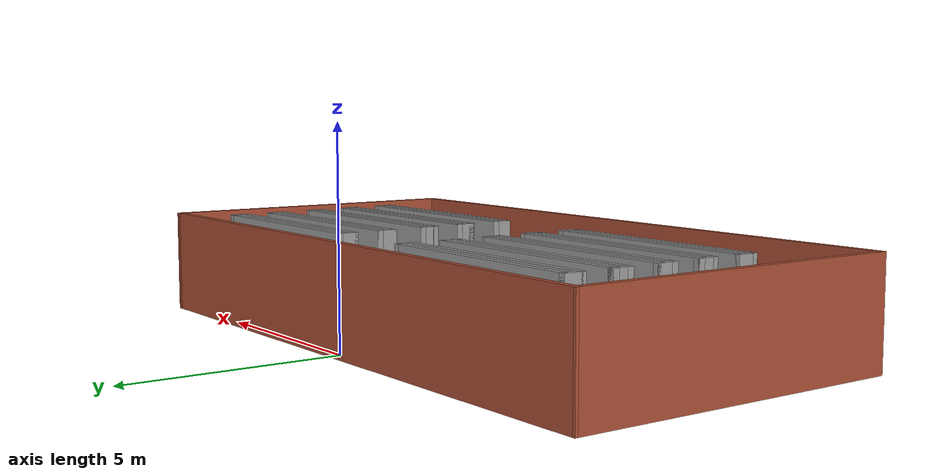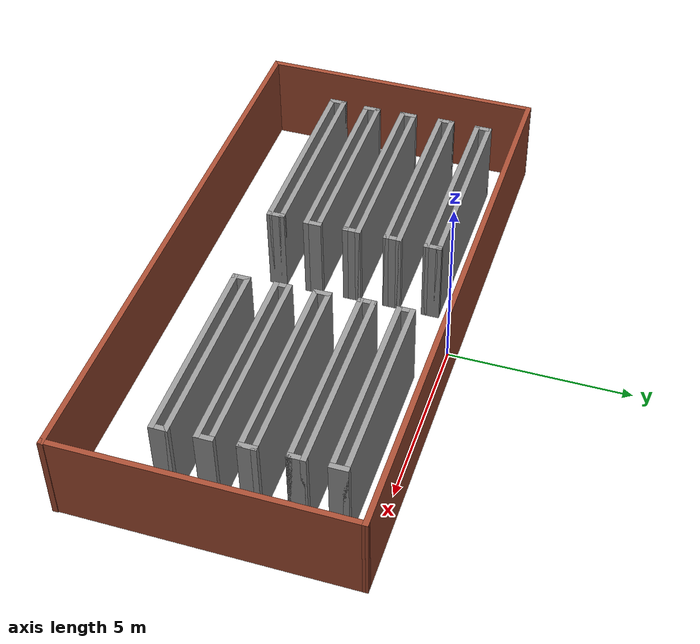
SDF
<?xml version='1.0'?>
<sdf version='1.7'>
  <model name='Library_map'>
    <pose>-0.101493 -3.73 0 0 -0 0</pose>
    <link name='Wall_13'>
      <collision name='Wall_13_Collision'>
        <geometry>
          <box>
            <size>8 0.15 2.5</size>
          </box>
        </geometry>
        <pose>0 0 1.25 0 -0 0</pose>
      </collision>
      <visual name='Wall_13_Visual'>
        <pose>0 0 1.25 0 -0 0</pose>
        <geometry>
          <box>
            <size>8 0.15 2.5</size>
          </box>
        </geometry>
        <material>
          <script>
            <uri>file://media/materials/scripts/gazebo.material</uri>
            <name>Gazebo/Bricks</name>
          </script>
          <ambient>1 1 1 1</ambient>
        </material>
        <meta>
          <layer>0</layer>
        </meta>
      </visual>
      <pose>-7.92514 0 0 0 -0 -1.5735</pose>
    </link>
    <link name='Wall_23'>
      <collision name='Wall_23_Collision'>
        <geometry>
          <box>
            <size>16 0.15 2.5</size>
          </box>
        </geometry>
        <pose>0 0 1.25 0 -0 0</pose>
      </collision>
      <visual name='Wall_23_Visual'>
        <pose>0 0 1.25 0 -0 0</pose>
        <geometry>
          <box>
            <size>16 0.15 2.5</size>
          </box>
        </geometry>
        <material>
          <script>
            <uri>file://media/materials/scripts/gazebo.material</uri>
            <name>Gazebo/Bricks</name>
          </script>
          <ambient>1 1 1 1</ambient>
        </material>
        <meta>
          <layer>0</layer>
        </meta>
      </visual>
      <pose>0.010971 -3.925 0 0 -0 0</pose>
    </link>
    <link name='Wall_24'>
      <collision name='Wall_24_Collision'>
        <geometry>
          <box>
            <size>8 0.15 2.5</size>
          </box>
        </geometry>
        <pose>0 0 1.25 0 -0 0</pose>
      </collision>
      <visual name='Wall_24_Visual'>
        <pose>0 0 1.25 0 -0 0</pose>
        <geometry>
          <box>
            <size>8 0.15 2.5</size>
          </box>
        </geometry>
        <material>
          <script>
            <uri>file://media/materials/scripts/gazebo.material</uri>
            <name>Gazebo/Bricks</name>
          </script>
          <ambient>1 1 1 1</ambient>
        </material>
        <meta>
          <layer>0</layer>
        </meta>
      </visual>
      <pose>7.92486 0 0 0 -0 1.56809</pose>
    </link>
    <link name='Wall_25'>
      <collision name='Wall_25_Collision'>
        <geometry>
          <box>
            <size>16 0.15 2.5</size>
          </box>
        </geometry>
        <pose>0 0 1.25 0 -0 0</pose>
      </collision>
      <visual name='Wall_25_Visual'>
        <pose>0 0 1.25 0 -0 0</pose>
        <geometry>
          <box>
            <size>16 0.15 2.5</size>
          </box>
        </geometry>
        <material>
          <script>
            <uri>file://media/materials/scripts/gazebo.material</uri>
            <name>Gazebo/Bricks</name>
          </script>
          <ambient>1 1 1 1</ambient>
        </material>
        <meta>
          <layer>0</layer>
        </meta>
      </visual>
      <pose>0.010493 3.925 0 0 -0 3.14159</pose>
    </link>
    <link name='Wall_27'>
      <collision name='Wall_27_Collision'>
        <geometry>
          <box>
            <size>5.5 0.15 2.5</size>
          </box>
        </geometry>
        <pose>0 0 1.25 0 -0 0</pose>
      </collision>
      <visual name='Wall_27_Visual'>
        <pose>0 0 1.25 0 -0 0</pose>
        <geometry>
          <box>
            <size>5.5 0.15 2.5</size>
          </box>
        </geometry>
        <material>
          <script>
            <uri>file://media/materials/scripts/gazebo.material</uri>
            <name>Gazebo/Grey</name>
          </script>
          <ambient>1 1 1 1</ambient>
        </material>
        <meta>
          <layer>0</layer>
        </meta>
      </visual>
      <pose>-3.91187 3.0632 0 0 -0 0</pose>
    </link>
    <link name='Wall_28'>
      <collision name='Wall_28_Collision'>
        <geometry>
          <box>
            <size>0.5 0.15 2.5</size>
          </box>
        </geometry>
        <pose>0 0 1.25 0 -0 0</pose>
      </collision>
      <visual name='Wall_28_Visual'>
        <pose>0 0 1.25 0 -0 0</pose>
        <geometry>
          <box>
            <size>0.5 0.15 2.5</size>
          </box>
        </geometry>
        <material>
          <script>
            <uri>file://media/materials/scripts/gazebo.material</uri>
            <name>Gazebo/Grey</name>
          </script>
          <ambient>1 1 1 1</ambient>
        </material>
        <meta>
          <layer>0</layer>
        </meta>
      </visual>
      <pose>-1.23687 2.8882 0 0 -0 -1.5708</pose>
    </link>
    <link name='Wall_29'>
      <collision name='Wall_29_Collision'>
        <geometry>
          <box>
            <size>5.5 0.15 2.5</size>
          </box>
        </geometry>
        <pose>0 0 1.25 0 -0 0</pose>
      </collision>
      <visual name='Wall_29_Visual'>
        <pose>0 0 1.25 0 -0 0</pose>
        <geometry>
          <box>
            <size>5.5 0.15 2.5</size>
          </box>
        </geometry>
        <material>
          <script>
            <uri>file://media/materials/scripts/gazebo.material</uri>
            <name>Gazebo/Grey</name>
          </script>
          <ambient>1 1 1 1</ambient>
        </material>
        <meta>
          <layer>0</layer>
        </meta>
      </visual>
      <pose>-3.91187 2.7132 0 0 -0 3.14159</pose>
    </link>
    <link name='Wall_30'>
      <collision name='Wall_30_Collision'>
        <geometry>
          <box>
            <size>0.5 0.15 2.5</size>
          </box>
        </geometry>
        <pose>0 0 1.25 0 -0 0</pose>
      </collision>
      <visual name='Wall_30_Visual'>
        <pose>0 0 1.25 0 -0 0</pose>
        <geometry>
          <box>
            <size>0.5 0.15 2.5</size>
          </box>
        </geometry>
        <material>
          <script>
            <uri>file://media/materials/scripts/gazebo.material</uri>
            <name>Gazebo/Grey</name>
          </script>
          <ambient>1 1 1 1</ambient>
        </material>
        <meta>
          <layer>0</layer>
        </meta>
      </visual>
      <pose>-6.58687 2.8882 0 0 -0 1.5708</pose>
    </link>
    <link name='Wall_32'>
      <collision name='Wall_32_Collision'>
        <geometry>
          <box>
            <size>5.5 0.15 2.5</size>
          </box>
        </geometry>
        <pose>0 0 1.25 0 -0 0</pose>
      </collision>
      <visual name='Wall_32_Visual'>
        <pose>0 0 1.25 0 -0 0</pose>
        <geometry>
          <box>
            <size>5.5 0.15 2.5</size>
          </box>
        </geometry>
        <material>
          <script>
            <uri>file://media/materials/scripts/gazebo.material</uri>
            <name>Gazebo/Grey</name>
          </script>
          <ambient>1 1 1 1</ambient>
        </material>
        <meta>
          <layer>0</layer>
        </meta>
      </visual>
      <pose>-3.93077 1.94788 0 0 -0 0</pose>
    </link>
    <link name='Wall_33'>
      <collision name='Wall_33_Collision'>
        <geometry>
          <box>
            <size>0.5 0.15 2.5</size>
          </box>
        </geometry>
        <pose>0 0 1.25 0 -0 0</pose>
      </collision>
      <visual name='Wall_33_Visual'>
        <pose>0 0 1.25 0 -0 0</pose>
        <geometry>
          <box>
            <size>0.5 0.15 2.5</size>
          </box>
        </geometry>
        <material>
          <script>
            <uri>file://media/materials/scripts/gazebo.material</uri>
            <name>Gazebo/Grey</name>
          </script>
          <ambient>1 1 1 1</ambient>
        </material>
        <meta>
          <layer>0</layer>
        </meta>
      </visual>
      <pose>-1.25577 1.77288 0 0 -0 -1.5708</pose>
    </link>
    <link name='Wall_34'>
      <collision name='Wall_34_Collision'>
        <geometry>
          <box>
            <size>5.5 0.15 2.5</size>
          </box>
        </geometry>
        <pose>0 0 1.25 0 -0 0</pose>
      </collision>
      <visual name='Wall_34_Visual'>
        <pose>0 0 1.25 0 -0 0</pose>
        <geometry>
          <box>
            <size>5.5 0.15 2.5</size>
          </box>
        </geometry>
        <material>
          <script>
            <uri>file://media/materials/scripts/gazebo.material</uri>
            <name>Gazebo/Grey</name>
          </script>
          <ambient>1 1 1 1</ambient>
        </material>
        <meta>
          <layer>0</layer>
        </meta>
      </visual>
      <pose>-3.93077 1.59788 0 0 -0 3.14159</pose>
    </link>
    <link name='Wall_35'>
      <collision name='Wall_35_Collision'>
        <geometry>
          <box>
            <size>0.5 0.15 2.5</size>
          </box>
        </geometry>
        <pose>0 0 1.25 0 -0 0</pose>
      </collision>
      <visual name='Wall_35_Visual'>
        <pose>0 0 1.25 0 -0 0</pose>
        <geometry>
          <box>
            <size>0.5 0.15 2.5</size>
          </box>
        </geometry>
        <material>
          <script>
            <uri>file://media/materials/scripts/gazebo.material</uri>
            <name>Gazebo/Grey</name>
          </script>
          <ambient>1 1 1 1</ambient>
        </material>
        <meta>
          <layer>0</layer>
        </meta>
      </visual>
      <pose>-6.60577 1.77288 0 0 -0 1.5708</pose>
    </link>
    <link name='Wall_37'>
      <collision name='Wall_37_Collision'>
        <geometry>
          <box>
            <size>5.5 0.15 2.5</size>
          </box>
        </geometry>
        <pose>0 0 1.25 0 -0 0</pose>
      </collision>
      <visual name='Wall_37_Visual'>
        <pose>0 0 1.25 0 -0 0</pose>
        <geometry>
          <box>
            <size>5.5 0.15 2.5</size>
          </box>
        </geometry>
        <material>
          <script>
            <uri>file://media/materials/scripts/gazebo.material</uri>
            <name>Gazebo/Grey</name>
          </script>
          <ambient>1 1 1 1</ambient>
        </material>
        <meta>
          <layer>0</layer>
        </meta>
      </visual>
      <pose>-3.91187 0.813668 0 0 -0 0</pose>
    </link>
    <link name='Wall_38'>
      <collision name='Wall_38_Collision'>
        <geometry>
          <box>
            <size>0.5 0.15 2.5</size>
          </box>
        </geometry>
        <pose>0 0 1.25 0 -0 0</pose>
      </collision>
      <visual name='Wall_38_Visual'>
        <pose>0 0 1.25 0 -0 0</pose>
        <geometry>
          <box>
            <size>0.5 0.15 2.5</size>
          </box>
        </geometry>
        <material>
          <script>
            <uri>file://media/materials/scripts/gazebo.material</uri>
            <name>Gazebo/Grey</name>
          </script>
          <ambient>1 1 1 1</ambient>
        </material>
        <meta>
          <layer>0</layer>
        </meta>
      </visual>
      <pose>-1.23687 0.638669 0 0 -0 -1.5708</pose>
    </link>
    <link name='Wall_39'>
      <collision name='Wall_39_Collision'>
        <geometry>
          <box>
            <size>5.5 0.15 2.5</size>
          </box>
        </geometry>
        <pose>0 0 1.25 0 -0 0</pose>
      </collision>
      <visual name='Wall_39_Visual'>
        <pose>0 0 1.25 0 -0 0</pose>
        <geometry>
          <box>
            <size>5.5 0.15 2.5</size>
          </box>
        </geometry>
        <material>
          <script>
            <uri>file://media/materials/scripts/gazebo.material</uri>
            <name>Gazebo/Grey</name>
          </script>
          <ambient>1 1 1 1</ambient>
        </material>
        <meta>
          <layer>0</layer>
        </meta>
      </visual>
      <pose>-3.91187 0.463669 0 0 -0 3.14159</pose>
    </link>
    <link name='Wall_40'>
      <collision name='Wall_40_Collision'>
        <geometry>
          <box>
            <size>0.5 0.15 2.5</size>
          </box>
        </geometry>
        <pose>0 0 1.25 0 -0 0</pose>
      </collision>
      <visual name='Wall_40_Visual'>
        <pose>0 0 1.25 0 -0 0</pose>
        <geometry>
          <box>
            <size>0.5 0.15 2.5</size>
          </box>
        </geometry>
        <material>
          <script>
            <uri>file://media/materials/scripts/gazebo.material</uri>
            <name>Gazebo/Grey</name>
          </script>
          <ambient>1 1 1 1</ambient>
        </material>
        <meta>
          <layer>0</layer>
        </meta>
      </visual>
      <pose>-6.58687 0.638669 0 0 -0 1.5708</pose>
    </link>
    <link name='Wall_42'>
      <collision name='Wall_42_Collision'>
        <geometry>
          <box>
            <size>5.5 0.15 2.5</size>
          </box>
        </geometry>
        <pose>0 0 1.25 0 -0 0</pose>
      </collision>
      <visual name='Wall_42_Visual'>
        <pose>0 0 1.25 0 -0 0</pose>
        <geometry>
          <box>
            <size>5.5 0.15 2.5</size>
          </box>
        </geometry>
        <material>
          <script>
            <uri>file://media/materials/scripts/gazebo.material</uri>
            <name>Gazebo/Grey</name>
          </script>
          <ambient>1 1 1 1</ambient>
        </material>
        <meta>
          <layer>0</layer>
        </meta>
      </visual>
      <pose>-3.87406 -0.28274 0 0 -0 0</pose>
    </link>
    <link name='Wall_43'>
      <collision name='Wall_43_Collision'>
        <geometry>
          <box>
            <size>0.5 0.15 2.5</size>
          </box>
        </geometry>
        <pose>0 0 1.25 0 -0 0</pose>
      </collision>
      <visual name='Wall_43_Visual'>
        <pose>0 0 1.25 0 -0 0</pose>
        <geometry>
          <box>
            <size>0.5 0.15 2.5</size>
          </box>
        </geometry>
        <material>
          <script>
            <uri>file://media/materials/scripts/gazebo.material</uri>
            <name>Gazebo/Grey</name>
          </script>
          <ambient>1 1 1 1</ambient>
        </material>
        <meta>
          <layer>0</layer>
        </meta>
      </visual>
      <pose>-1.19906 -0.45774 0 0 -0 -1.5708</pose>
    </link>
    <link name='Wall_44'>
      <collision name='Wall_44_Collision'>
        <geometry>
          <box>
            <size>5.5 0.15 2.5</size>
          </box>
        </geometry>
        <pose>0 0 1.25 0 -0 0</pose>
      </collision>
      <visual name='Wall_44_Visual'>
        <pose>0 0 1.25 0 -0 0</pose>
        <geometry>
          <box>
            <size>5.5 0.15 2.5</size>
          </box>
        </geometry>
        <material>
          <script>
            <uri>file://media/materials/scripts/gazebo.material</uri>
            <name>Gazebo/Grey</name>
          </script>
          <ambient>1 1 1 1</ambient>
        </material>
        <meta>
          <layer>0</layer>
        </meta>
      </visual>
      <pose>-3.87406 -0.63274 0 0 -0 3.14159</pose>
    </link>
    <link name='Wall_45'>
      <collision name='Wall_45_Collision'>
        <geometry>
          <box>
            <size>0.5 0.15 2.5</size>
          </box>
        </geometry>
        <pose>0 0 1.25 0 -0 0</pose>
      </collision>
      <visual name='Wall_45_Visual'>
        <pose>0 0 1.25 0 -0 0</pose>
        <geometry>
          <box>
            <size>0.5 0.15 2.5</size>
          </box>
        </geometry>
        <material>
          <script>
            <uri>file://media/materials/scripts/gazebo.material</uri>
            <name>Gazebo/Grey</name>
          </script>
          <ambient>1 1 1 1</ambient>
        </material>
        <meta>
          <layer>0</layer>
        </meta>
      </visual>
      <pose>-6.54906 -0.45774 0 0 -0 1.5708</pose>
    </link>
    <link name='Wall_47'>
      <collision name='Wall_47_Collision'>
        <geometry>
          <box>
            <size>5.5 0.15 2.5</size>
          </box>
        </geometry>
        <pose>0 0 1.25 0 -0 0</pose>
      </collision>
      <visual name='Wall_47_Visual'>
        <pose>0 0 1.25 0 -0 0</pose>
        <geometry>
          <box>
            <size>5.5 0.15 2.5</size>
          </box>
        </geometry>
        <material>
          <script>
            <uri>file://media/materials/scripts/gazebo.material</uri>
            <name>Gazebo/Grey</name>
          </script>
          <ambient>1 1 1 1</ambient>
        </material>
        <meta>
          <layer>0</layer>
        </meta>
      </visual>
      <pose>-3.91187 -1.34134 0 0 -0 0</pose>
    </link>
    <link name='Wall_48'>
      <collision name='Wall_48_Collision'>
        <geometry>
          <box>
            <size>0.5 0.15 2.5</size>
          </box>
        </geometry>
        <pose>0 0 1.25 0 -0 0</pose>
      </collision>
      <visual name='Wall_48_Visual'>
        <pose>0 0 1.25 0 -0 0</pose>
        <geometry>
          <box>
            <size>0.5 0.15 2.5</size>
          </box>
        </geometry>
        <material>
          <script>
            <uri>file://media/materials/scripts/gazebo.material</uri>
            <name>Gazebo/Grey</name>
          </script>
          <ambient>1 1 1 1</ambient>
        </material>
        <meta>
          <layer>0</layer>
        </meta>
      </visual>
      <pose>-1.23687 -1.51634 0 0 -0 -1.5708</pose>
    </link>
    <link name='Wall_49'>
      <collision name='Wall_49_Collision'>
        <geometry>
          <box>
            <size>5.5 0.15 2.5</size>
          </box>
        </geometry>
        <pose>0 0 1.25 0 -0 0</pose>
      </collision>
      <visual name='Wall_49_Visual'>
        <pose>0 0 1.25 0 -0 0</pose>
        <geometry>
          <box>
            <size>5.5 0.15 2.5</size>
          </box>
        </geometry>
        <material>
          <script>
            <uri>file://media/materials/scripts/gazebo.material</uri>
            <name>Gazebo/Grey</name>
          </script>
          <ambient>1 1 1 1</ambient>
        </material>
        <meta>
          <layer>0</layer>
        </meta>
      </visual>
      <pose>-3.91187 -1.69134 0 0 -0 3.14159</pose>
    </link>
    <link name='Wall_50'>
      <collision name='Wall_50_Collision'>
        <geometry>
          <box>
            <size>0.5 0.15 2.5</size>
          </box>
        </geometry>
        <pose>0 0 1.25 0 -0 0</pose>
      </collision>
      <visual name='Wall_50_Visual'>
        <pose>0 0 1.25 0 -0 0</pose>
        <geometry>
          <box>
            <size>0.5 0.15 2.5</size>
          </box>
        </geometry>
        <material>
          <script>
            <uri>file://media/materials/scripts/gazebo.material</uri>
            <name>Gazebo/Grey</name>
          </script>
          <ambient>1 1 1 1</ambient>
        </material>
        <meta>
          <layer>0</layer>
        </meta>
      </visual>
      <pose>-6.58687 -1.51634 0 0 -0 1.5708</pose>
    </link>
    <link name='Wall_58'>
      <collision name='Wall_58_Collision'>
        <geometry>
          <box>
            <size>5.5 0.15 2.5</size>
          </box>
        </geometry>
        <pose>0 0 1.25 0 -0 0</pose>
      </collision>
      <visual name='Wall_58_Visual'>
        <pose>0 0 1.25 0 -0 0</pose>
        <geometry>
          <box>
            <size>5.5 0.15 2.5</size>
          </box>
        </geometry>
        <material>
          <script>
            <uri>file://media/materials/scripts/gazebo.material</uri>
            <name>Gazebo/Grey</name>
          </script>
          <ambient>1 1 1 1</ambient>
        </material>
        <meta>
          <layer>0</layer>
        </meta>
      </visual>
      <pose>3.93284 3.04429 0 0 -0 3.14159</pose>
    </link>
    <link name='Wall_59'>
      <collision name='Wall_59_Collision'>
        <geometry>
          <box>
            <size>0.5 0.15 2.5</size>
          </box>
        </geometry>
        <pose>0 0 1.25 0 -0 0</pose>
      </collision>
      <visual name='Wall_59_Visual'>
        <pose>0 0 1.25 0 -0 0</pose>
        <geometry>
          <box>
            <size>0.5 0.15 2.5</size>
          </box>
        </geometry>
        <material>
          <script>
            <uri>file://media/materials/scripts/gazebo.material</uri>
            <name>Gazebo/Grey</name>
          </script>
          <ambient>1 1 1 1</ambient>
        </material>
        <meta>
          <layer>0</layer>
        </meta>
      </visual>
      <pose>1.25784 2.86929 0 0 -0 -1.5708</pose>
    </link>
    <link name='Wall_60'>
      <collision name='Wall_60_Collision'>
        <geometry>
          <box>
            <size>5.5 0.15 2.5</size>
          </box>
        </geometry>
        <pose>0 0 1.25 0 -0 0</pose>
      </collision>
      <visual name='Wall_60_Visual'>
        <pose>0 0 1.25 0 -0 0</pose>
        <geometry>
          <box>
            <size>5.5 0.15 2.5</size>
          </box>
        </geometry>
        <material>
          <script>
            <uri>file://media/materials/scripts/gazebo.material</uri>
            <name>Gazebo/Grey</name>
          </script>
          <ambient>1 1 1 1</ambient>
        </material>
        <meta>
          <layer>0</layer>
        </meta>
      </visual>
      <pose>3.93284 2.69429 0 0 -0 0</pose>
    </link>
    <link name='Wall_61'>
      <collision name='Wall_61_Collision'>
        <geometry>
          <box>
            <size>0.5 0.15 2.5</size>
          </box>
        </geometry>
        <pose>0 0 1.25 0 -0 0</pose>
      </collision>
      <visual name='Wall_61_Visual'>
        <pose>0 0 1.25 0 -0 0</pose>
        <geometry>
          <box>
            <size>0.5 0.15 2.5</size>
          </box>
        </geometry>
        <material>
          <script>
            <uri>file://media/materials/scripts/gazebo.material</uri>
            <name>Gazebo/Grey</name>
          </script>
          <ambient>1 1 1 1</ambient>
        </material>
        <meta>
          <layer>0</layer>
        </meta>
      </visual>
      <pose>6.60784 2.86929 0 0 -0 1.5708</pose>
    </link>
    <link name='Wall_63'>
      <collision name='Wall_63_Collision'>
        <geometry>
          <box>
            <size>5.5 0.15 2.5</size>
          </box>
        </geometry>
        <pose>0 0 1.25 0 -0 0</pose>
      </collision>
      <visual name='Wall_63_Visual'>
        <pose>0 0 1.25 0 -0 0</pose>
        <geometry>
          <box>
            <size>5.5 0.15 2.5</size>
          </box>
        </geometry>
        <material>
          <script>
            <uri>file://media/materials/scripts/gazebo.material</uri>
            <name>Gazebo/Grey</name>
          </script>
          <ambient>1 1 1 1</ambient>
        </material>
        <meta>
          <layer>0</layer>
        </meta>
      </visual>
      <pose>3.93284 2.0235 0 0 -0 3.14159</pose>
    </link>
    <link name='Wall_64'>
      <collision name='Wall_64_Collision'>
        <geometry>
          <box>
            <size>0.5 0.15 2.5</size>
          </box>
        </geometry>
        <pose>0 0 1.25 0 -0 0</pose>
      </collision>
      <visual name='Wall_64_Visual'>
        <pose>0 0 1.25 0 -0 0</pose>
        <geometry>
          <box>
            <size>0.5 0.15 2.5</size>
          </box>
        </geometry>
        <material>
          <script>
            <uri>file://media/materials/scripts/gazebo.material</uri>
            <name>Gazebo/Grey</name>
          </script>
          <ambient>1 1 1 1</ambient>
        </material>
        <meta>
          <layer>0</layer>
        </meta>
      </visual>
      <pose>1.25784 1.8485 0 0 -0 -1.5708</pose>
    </link>
    <link name='Wall_65'>
      <collision name='Wall_65_Collision'>
        <geometry>
          <box>
            <size>5.5 0.15 2.5</size>
          </box>
        </geometry>
        <pose>0 0 1.25 0 -0 0</pose>
      </collision>
      <visual name='Wall_65_Visual'>
        <pose>0 0 1.25 0 -0 0</pose>
        <geometry>
          <box>
            <size>5.5 0.15 2.5</size>
          </box>
        </geometry>
        <material>
          <script>
            <uri>file://media/materials/scripts/gazebo.material</uri>
            <name>Gazebo/Grey</name>
          </script>
          <ambient>1 1 1 1</ambient>
        </material>
        <meta>
          <layer>0</layer>
        </meta>
      </visual>
      <pose>3.93284 1.6735 0 0 -0 0</pose>
    </link>
    <link name='Wall_66'>
      <collision name='Wall_66_Collision'>
        <geometry>
          <box>
            <size>0.5 0.15 2.5</size>
          </box>
        </geometry>
        <pose>0 0 1.25 0 -0 0</pose>
      </collision>
      <visual name='Wall_66_Visual'>
        <pose>0 0 1.25 0 -0 0</pose>
        <geometry>
          <box>
            <size>0.5 0.15 2.5</size>
          </box>
        </geometry>
        <material>
          <script>
            <uri>file://media/materials/scripts/gazebo.material</uri>
            <name>Gazebo/Grey</name>
          </script>
          <ambient>1 1 1 1</ambient>
        </material>
        <meta>
          <layer>0</layer>
        </meta>
      </visual>
      <pose>6.60784 1.8485 0 0 -0 1.5708</pose>
    </link>
    <link name='Wall_73'>
      <collision name='Wall_73_Collision'>
        <geometry>
          <box>
            <size>5.5 0.15 2.5</size>
          </box>
        </geometry>
        <pose>0 0 1.25 0 -0 0</pose>
      </collision>
      <visual name='Wall_73_Visual'>
        <pose>0 0 1.25 0 -0 0</pose>
        <geometry>
          <box>
            <size>5.5 0.15 2.5</size>
          </box>
        </geometry>
        <material>
          <script>
            <uri>file://media/materials/scripts/gazebo.material</uri>
            <name>Gazebo/Grey</name>
          </script>
          <ambient>1 1 1 1</ambient>
        </material>
        <meta>
          <layer>0</layer>
        </meta>
      </visual>
      <pose>4.00845 -0.226029 0 0 -0 3.14159</pose>
    </link>
    <link name='Wall_74'>
      <collision name='Wall_74_Collision'>
        <geometry>
          <box>
            <size>0.5 0.15 2.5</size>
          </box>
        </geometry>
        <pose>0 0 1.25 0 -0 0</pose>
      </collision>
      <visual name='Wall_74_Visual'>
        <pose>0 0 1.25 0 -0 0</pose>
        <geometry>
          <box>
            <size>0.5 0.15 2.5</size>
          </box>
        </geometry>
        <material>
          <script>
            <uri>file://media/materials/scripts/gazebo.material</uri>
            <name>Gazebo/Grey</name>
          </script>
          <ambient>1 1 1 1</ambient>
        </material>
        <meta>
          <layer>0</layer>
        </meta>
      </visual>
      <pose>1.33345 -0.401029 0 0 -0 -1.5708</pose>
    </link>
    <link name='Wall_75'>
      <collision name='Wall_75_Collision'>
        <geometry>
          <box>
            <size>5.5 0.15 2.5</size>
          </box>
        </geometry>
        <pose>0 0 1.25 0 -0 0</pose>
      </collision>
      <visual name='Wall_75_Visual'>
        <pose>0 0 1.25 0 -0 0</pose>
        <geometry>
          <box>
            <size>5.5 0.15 2.5</size>
          </box>
        </geometry>
        <material>
          <script>
            <uri>file://media/materials/scripts/gazebo.material</uri>
            <name>Gazebo/Grey</name>
          </script>
          <ambient>1 1 1 1</ambient>
        </material>
        <meta>
          <layer>0</layer>
        </meta>
      </visual>
      <pose>4.00845 -0.576029 0 0 -0 0</pose>
    </link>
    <link name='Wall_76'>
      <collision name='Wall_76_Collision'>
        <geometry>
          <box>
            <size>0.5 0.15 2.5</size>
          </box>
        </geometry>
        <pose>0 0 1.25 0 -0 0</pose>
      </collision>
      <visual name='Wall_76_Visual'>
        <pose>0 0 1.25 0 -0 0</pose>
        <geometry>
          <box>
            <size>0.5 0.15 2.5</size>
          </box>
        </geometry>
        <material>
          <script>
            <uri>file://media/materials/scripts/gazebo.material</uri>
            <name>Gazebo/Grey</name>
          </script>
          <ambient>1 1 1 1</ambient>
        </material>
        <meta>
          <layer>0</layer>
        </meta>
      </visual>
      <pose>6.68345 -0.401029 0 0 -0 1.5708</pose>
    </link>
    <link name='Wall_79'>
      <collision name='Wall_79_Collision'>
        <geometry>
          <box>
            <size>5.5 0.15 2.5</size>
          </box>
        </geometry>
        <pose>0 0 1.25 0 -0 0</pose>
      </collision>
      <visual name='Wall_79_Visual'>
        <pose>0 0 1.25 0 -0 0</pose>
        <geometry>
          <box>
            <size>5.5 0.15 2.5</size>
          </box>
        </geometry>
        <material>
          <script>
            <uri>file://media/materials/scripts/gazebo.material</uri>
            <name>Gazebo/Grey</name>
          </script>
          <ambient>1 1 1 1</ambient>
        </material>
        <meta>
          <layer>0</layer>
        </meta>
      </visual>
      <pose>4.04626 -1.34134 0 0 -0 3.14159</pose>
    </link>
    <link name='Wall_80'>
      <collision name='Wall_80_Collision'>
        <geometry>
          <box>
            <size>0.5 0.15 2.5</size>
          </box>
        </geometry>
        <pose>0 0 1.25 0 -0 0</pose>
      </collision>
      <visual name='Wall_80_Visual'>
        <pose>0 0 1.25 0 -0 0</pose>
        <geometry>
          <box>
            <size>0.5 0.15 2.5</size>
          </box>
        </geometry>
        <material>
          <script>
            <uri>file://media/materials/scripts/gazebo.material</uri>
            <name>Gazebo/Grey</name>
          </script>
          <ambient>1 1 1 1</ambient>
        </material>
        <meta>
          <layer>0</layer>
        </meta>
      </visual>
      <pose>1.37126 -1.51634 0 0 -0 -1.5708</pose>
    </link>
    <link name='Wall_81'>
      <collision name='Wall_81_Collision'>
        <geometry>
          <box>
            <size>5.5 0.15 2.5</size>
          </box>
        </geometry>
        <pose>0 0 1.25 0 -0 0</pose>
      </collision>
      <visual name='Wall_81_Visual'>
        <pose>0 0 1.25 0 -0 0</pose>
        <geometry>
          <box>
            <size>5.5 0.15 2.5</size>
          </box>
        </geometry>
        <material>
          <script>
            <uri>file://media/materials/scripts/gazebo.material</uri>
            <name>Gazebo/Grey</name>
          </script>
          <ambient>1 1 1 1</ambient>
        </material>
        <meta>
          <layer>0</layer>
        </meta>
      </visual>
      <pose>4.04626 -1.69134 0 0 -0 0</pose>
    </link>
    <link name='Wall_82'>
      <collision name='Wall_82_Collision'>
        <geometry>
          <box>
            <size>0.5 0.15 2.5</size>
          </box>
        </geometry>
        <pose>0 0 1.25 0 -0 0</pose>
      </collision>
      <visual name='Wall_82_Visual'>
        <pose>0 0 1.25 0 -0 0</pose>
        <geometry>
          <box>
            <size>0.5 0.15 2.5</size>
          </box>
        </geometry>
        <material>
          <script>
            <uri>file://media/materials/scripts/gazebo.material</uri>
            <name>Gazebo/Grey</name>
          </script>
          <ambient>1 1 1 1</ambient>
        </material>
        <meta>
          <layer>0</layer>
        </meta>
      </visual>
      <pose>6.72126 -1.51634 0 0 -0 1.5708</pose>
    </link>
    <link name='Wall_84'>
      <collision name='Wall_84_Collision'>
        <geometry>
          <box>
            <size>5.5 0.15 2.5</size>
          </box>
        </geometry>
        <pose>0 0 1.25 0 -0 0</pose>
      </collision>
      <visual name='Wall_84_Visual'>
        <pose>0 0 1.25 0 -0 0</pose>
        <geometry>
          <box>
            <size>5.5 0.15 2.5</size>
          </box>
        </geometry>
        <material>
          <script>
            <uri>file://media/materials/scripts/gazebo.material</uri>
            <name>Gazebo/Grey</name>
          </script>
          <ambient>1 1 1 1</ambient>
        </material>
        <meta>
          <layer>0</layer>
        </meta>
      </visual>
      <pose>3.97211 0.833311 0 0 -0 3.14159</pose>
    </link>
    <link name='Wall_85'>
      <collision name='Wall_85_Collision'>
        <geometry>
          <box>
            <size>0.5 0.15 2.5</size>
          </box>
        </geometry>
        <pose>0 0 1.25 0 -0 0</pose>
      </collision>
      <visual name='Wall_85_Visual'>
        <pose>0 0 1.25 0 -0 0</pose>
        <geometry>
          <box>
            <size>0.5 0.15 2.5</size>
          </box>
        </geometry>
        <material>
          <script>
            <uri>file://media/materials/scripts/gazebo.material</uri>
            <name>Gazebo/Grey</name>
          </script>
          <ambient>1 1 1 1</ambient>
        </material>
        <meta>
          <layer>0</layer>
        </meta>
      </visual>
      <pose>1.29711 0.658311 0 0 -0 -1.5708</pose>
    </link>
    <link name='Wall_86'>
      <collision name='Wall_86_Collision'>
        <geometry>
          <box>
            <size>5.5 0.15 2.5</size>
          </box>
        </geometry>
        <pose>0 0 1.25 0 -0 0</pose>
      </collision>
      <visual name='Wall_86_Visual'>
        <pose>0 0 1.25 0 -0 0</pose>
        <geometry>
          <box>
            <size>5.5 0.15 2.5</size>
          </box>
        </geometry>
        <material>
          <script>
            <uri>file://media/materials/scripts/gazebo.material</uri>
            <name>Gazebo/Grey</name>
          </script>
          <ambient>1 1 1 1</ambient>
        </material>
        <meta>
          <layer>0</layer>
        </meta>
      </visual>
      <pose>3.97211 0.483311 0 0 -0 0</pose>
    </link>
    <link name='Wall_87'>
      <collision name='Wall_87_Collision'>
        <geometry>
          <box>
            <size>0.5 0.15 2.5</size>
          </box>
        </geometry>
        <pose>0 0 1.25 0 -0 0</pose>
      </collision>
      <visual name='Wall_87_Visual'>
        <pose>0 0 1.25 0 -0 0</pose>
        <geometry>
          <box>
            <size>0.5 0.15 2.5</size>
          </box>
        </geometry>
        <material>
          <script>
            <uri>file://media/materials/scripts/gazebo.material</uri>
            <name>Gazebo/Grey</name>
          </script>
          <ambient>1 1 1 1</ambient>
        </material>
        <meta>
          <layer>0</layer>
        </meta>
      </visual>
      <pose>6.64711 0.658311 0 0 -0 1.5708</pose>
    </link>
    <static>1</static>
  </model>
</sdf>
